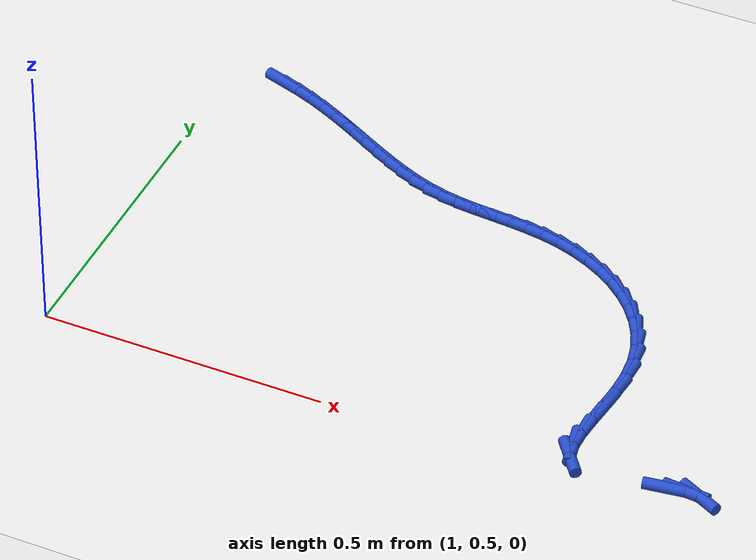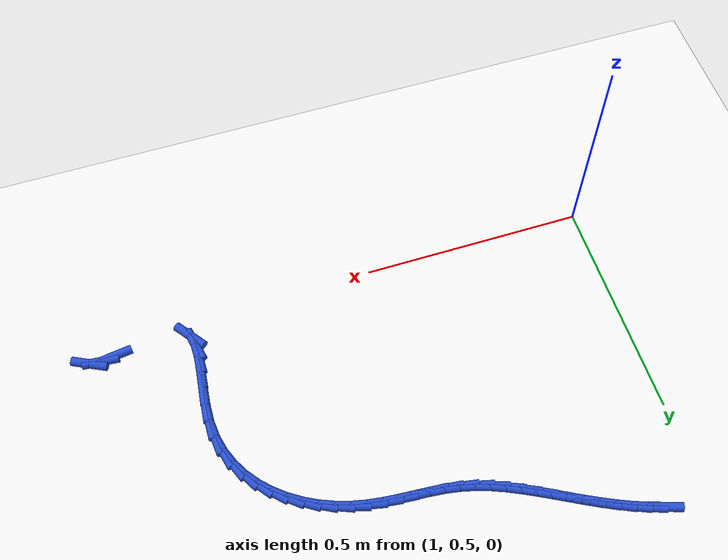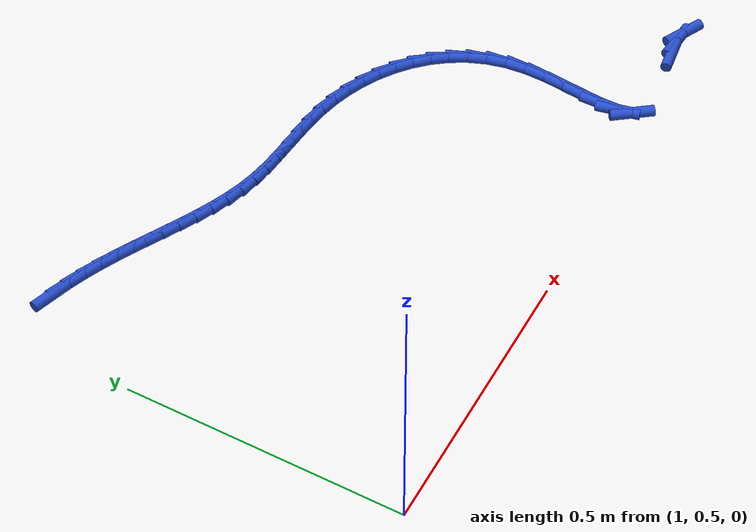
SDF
<sdf version="1.6">
 <world name="default">
  <model name="ground_plane">
   <static>1</static>
   <link name="link">
    <collision name="collision">
     <geometry><plane><normal>0 0 1</normal><size>100 100</size></plane></geometry>
     <surface><friction><ode><mu>100</mu><mu2>50</mu2></ode></friction></surface>
    </collision>
    <visual name="visual">
     <cast_shadows>0</cast_shadows>
     <geometry><plane><normal>0 0 1</normal><size>100 100</size></plane></geometry>
     <material>
      <script><uri>file://media/materials/scripts/gazebo.material</uri><name>Gazebo/WhiteGlow</name></script>
     </material>
    </visual>
   </link>
  </model>
  <model name="line">
   <link name="link_58">
    <pose>1.099072467121768 1.2077701602756707 0.01 0 1.57 -0.31014629061184196</pose>
    <collision name="collision">
     <geometry><cylinder><radius>0.01</radius><length>0.08</length></cylinder></geometry>
    </collision>
    <visual name="visual">
     <material>
      <script><name>Gazebo/Blue</name><uri>file://media/materials/scripts/gazebo.material</uri></script>
     </material>
     <geometry><cylinder><radius>0.01</radius><length>0.08</length></cylinder></geometry>
    </visual>
   </link>
   <link name="link_59">
    <pose>1.1291945976557205 1.1981163543830604 0.01 0 1.57 -0.36388642734052323</pose>
    <collision name="collision">
     <geometry><cylinder><radius>0.01</radius><length>0.08</length></cylinder></geometry>
    </collision>
    <visual name="visual">
     <material>
      <script><name>Gazebo/Blue</name><uri>file://media/materials/scripts/gazebo.material</uri></script>
     </material>
     <geometry><cylinder><radius>0.01</radius><length>0.08</length></cylinder></geometry>
    </visual>
   </link>
   <link name="link_60">
    <pose>1.1585133068817368 1.1869504287228003 0.01 0 1.57 -0.4089232763050112</pose>
    <collision name="collision">
     <geometry><cylinder><radius>0.01</radius><length>0.08</length></cylinder></geometry>
    </collision>
    <visual name="visual">
     <material>
      <script><name>Gazebo/Blue</name><uri>file://media/materials/scripts/gazebo.material</uri></script>
     </material>
     <geometry><cylinder><radius>0.01</radius><length>0.08</length></cylinder></geometry>
    </visual>
   </link>
   <link name="link_61">
    <pose>1.1872229321218786 1.1745090643503224 0.01 0 1.57 -0.44460271883285246</pose>
    <collision name="collision">
     <geometry><cylinder><radius>0.01</radius><length>0.08</length></cylinder></geometry>
    </collision>
    <visual name="visual">
     <material>
      <script><name>Gazebo/Blue</name><uri>file://media/materials/scripts/gazebo.material</uri></script>
     </material>
     <geometry><cylinder><radius>0.01</radius><length>0.08</length></cylinder></geometry>
    </visual>
   </link>
   <link name="link_62">
    <pose>1.2155178106982085 1.16102894232106 0.01 0 1.57 -0.47060362511649007</pose>
    <collision name="collision">
     <geometry><cylinder><radius>0.01</radius><length>0.08</length></cylinder></geometry>
    </collision>
    <visual name="visual">
     <material>
      <script><name>Gazebo/Blue</name><uri>file://media/materials/scripts/gazebo.material</uri></script>
     </material>
     <geometry><cylinder><radius>0.01</radius><length>0.08</length></cylinder></geometry>
    </visual>
   </link>
   <link name="link_63">
    <pose>1.2435922799327899 1.1467467436904446 0.01 0 1.57 -0.48685586399208586</pose>
    <collision name="collision">
     <geometry><cylinder><radius>0.01</radius><length>0.08</length></cylinder></geometry>
    </collision>
    <visual name="visual">
     <material>
      <script><name>Gazebo/Blue</name><uri>file://media/materials/scripts/gazebo.material</uri></script>
     </material>
     <geometry><cylinder><radius>0.01</radius><length>0.08</length></cylinder></geometry>
    </visual>
   </link>
   <link name="link_64">
    <pose>1.2716406771476843 1.1318991495139095 0.01 0 1.57 -0.49330244291777964</pose>
    <collision name="collision">
     <geometry><cylinder><radius>0.01</radius><length>0.08</length></cylinder></geometry>
    </collision>
    <visual name="visual">
     <material>
      <script><name>Gazebo/Blue</name><uri>file://media/materials/scripts/gazebo.material</uri></script>
     </material>
     <geometry><cylinder><radius>0.01</radius><length>0.08</length></cylinder></geometry>
    </visual>
   </link>
   <link name="link_65">
    <pose>1.2998517276485444 1.1167318267578665 0.01 0 1.57 -0.48777460467968503</pose>
    <collision name="collision">
     <geometry><cylinder><radius>0.01</radius><length>0.08</length></cylinder></geometry>
    </collision>
    <visual name="visual">
     <material>
      <script><name>Gazebo/Blue</name><uri>file://media/materials/scripts/gazebo.material</uri></script>
     </material>
     <geometry><cylinder><radius>0.01</radius><length>0.08</length></cylinder></geometry>
    </visual>
   </link>
   <link name="link_66">
    <pose>1.3283318960715478 1.1016221574442704 0.01 0 1.57 -0.4685803499271244</pose>
    <collision name="collision">
     <geometry><cylinder><radius>0.01</radius><length>0.08</length></cylinder></geometry>
    </collision>
    <visual name="visual">
     <material>
      <script><name>Gazebo/Blue</name><uri>file://media/materials/scripts/gazebo.material</uri></script>
     </material>
     <geometry><cylinder><radius>0.01</radius><length>0.08</length></cylinder></geometry>
    </visual>
   </link>
   <link name="link_67">
    <pose>1.3571251868235479 1.0870475343611745 0.01 0 1.57 -0.4354119637159868</pose>
    <collision name="collision">
     <geometry><cylinder><radius>0.01</radius><length>0.08</length></cylinder></geometry>
    </collision>
    <visual name="visual">
     <material>
      <script><name>Gazebo/Blue</name><uri>file://media/materials/scripts/gazebo.material</uri></script>
     </material>
     <geometry><cylinder><radius>0.01</radius><length>0.08</length></cylinder></geometry>
    </visual>
   </link>
   <link name="link_68">
    <pose>1.3862740467506751 1.0734878442490714 0.01 0 1.57 -0.38766656314834985</pose>
    <collision name="collision">
     <geometry><cylinder><radius>0.01</radius><length>0.08</length></cylinder></geometry>
    </collision>
    <visual name="visual">
     <material>
      <script><name>Gazebo/Blue</name><uri>file://media/materials/scripts/gazebo.material</uri></script>
     </material>
     <geometry><cylinder><radius>0.01</radius><length>0.08</length></cylinder></geometry>
    </visual>
   </link>
   <link name="link_69">
    <pose>1.4158209226990603 1.0614229738484542 0.01 0 1.57 -0.3245806004094552</pose>
    <collision name="collision">
     <geometry><cylinder><radius>0.01</radius><length>0.08</length></cylinder></geometry>
    </collision>
    <visual name="visual">
     <material>
      <script><name>Gazebo/Blue</name><uri>file://media/materials/scripts/gazebo.material</uri></script>
     </material>
     <geometry><cylinder><radius>0.01</radius><length>0.08</length></cylinder></geometry>
    </visual>
   </link>
   <link name="link_70">
    <pose>1.4458082615148342 1.0513328098998154 0.01 0 1.57 -0.24566906801516292</pose>
    <collision name="collision">
     <geometry><cylinder><radius>0.01</radius><length>0.08</length></cylinder></geometry>
    </collision>
    <visual name="visual">
     <material>
      <script><name>Gazebo/Blue</name><uri>file://media/materials/scripts/gazebo.material</uri></script>
     </material>
     <geometry><cylinder><radius>0.01</radius><length>0.08</length></cylinder></geometry>
    </visual>
   </link>
   <link name="link_71">
    <pose>1.476278074529732 1.0436930014944208 0.01 0 1.57 -0.16463551399433787</pose>
    <collision name="collision">
     <geometry><cylinder><radius>0.01</radius><length>0.08</length></cylinder></geometry>
    </collision>
    <visual name="visual">
     <material>
      <script><name>Gazebo/Blue</name><uri>file://media/materials/scripts/gazebo.material</uri></script>
     </material>
     <geometry><cylinder><radius>0.01</radius><length>0.08</length></cylinder></geometry>
    </visual>
   </link>
   <link name="link_72">
    <pose>1.507228360196232 1.0385509428919517 0.01 0 1.57 -0.10761900310513371</pose>
    <collision name="collision">
     <geometry><cylinder><radius>0.01</radius><length>0.08</length></cylinder></geometry>
    </collision>
    <visual name="visual">
     <material>
      <script><name>Gazebo/Blue</name><uri>file://media/materials/scripts/gazebo.material</uri></script>
     </material>
     <geometry><cylinder><radius>0.01</radius><length>0.08</length></cylinder></geometry>
    </visual>
   </link>
   <link name="link_73">
    <pose>1.5385759505619285 1.0351642616829078 0.01 0 1.57 -0.07752485123252725</pose>
    <collision name="collision">
     <geometry><cylinder><radius>0.01</radius><length>0.08</length></cylinder></geometry>
    </collision>
    <visual name="visual">
     <material>
      <script><name>Gazebo/Blue</name><uri>file://media/materials/scripts/gazebo.material</uri></script>
     </material>
     <geometry><cylinder><radius>0.01</radius><length>0.08</length></cylinder></geometry>
    </visual>
   </link>
   <link name="link_74">
    <pose>1.5702289272033598 1.0327054414823718 0.01 0 1.57 -0.07387656196088468</pose>
    <collision name="collision">
     <geometry><cylinder><radius>0.01</radius><length>0.08</length></cylinder></geometry>
    </collision>
    <visual name="visual">
     <material>
      <script><name>Gazebo/Blue</name><uri>file://media/materials/scripts/gazebo.material</uri></script>
     </material>
     <geometry><cylinder><radius>0.01</radius><length>0.08</length></cylinder></geometry>
    </visual>
   </link>
   <link name="link_75">
    <pose>1.6020953716970612 1.0303469659054256 0.01 0 1.57 -0.09616513398276337</pose>
    <collision name="collision">
     <geometry><cylinder><radius>0.01</radius><length>0.08</length></cylinder></geometry>
    </collision>
    <visual name="visual">
     <material>
      <script><name>Gazebo/Blue</name><uri>file://media/materials/scripts/gazebo.material</uri></script>
     </material>
     <geometry><cylinder><radius>0.01</radius><length>0.08</length></cylinder></geometry>
    </visual>
   </link>
   <link name="link_76">
    <pose>1.6340833656195697 1.0272613185671522 0.01 0 1.57 -0.1439285080394191</pose>
    <collision name="collision">
     <geometry><cylinder><radius>0.01</radius><length>0.08</length></cylinder></geometry>
    </collision>
    <visual name="visual">
     <material>
      <script><name>Gazebo/Blue</name><uri>file://media/materials/scripts/gazebo.material</uri></script>
     </material>
     <geometry><cylinder><radius>0.01</radius><length>0.08</length></cylinder></geometry>
    </visual>
   </link>
   <link name="link_77">
    <pose>1.6661009905474229 1.022620983082634 0.01 0 1.57 -0.2162342092251296</pose>
    <collision name="collision">
     <geometry><cylinder><radius>0.01</radius><length>0.08</length></cylinder></geometry>
    </collision>
    <visual name="visual">
     <material>
      <script><name>Gazebo/Blue</name><uri>file://media/materials/scripts/gazebo.material</uri></script>
     </material>
     <geometry><cylinder><radius>0.01</radius><length>0.08</length></cylinder></geometry>
    </visual>
   </link>
   <link name="link_78">
    <pose>1.6980549061627606 1.0156017102722732 0.01 0 1.57 -0.30388142257924067</pose>
    <collision name="collision">
     <geometry><cylinder><radius>0.01</radius><length>0.08</length></cylinder></geometry>
    </collision>
    <visual name="visual">
     <material>
      <script><name>Gazebo/Blue</name><uri>file://media/materials/scripts/gazebo.material</uri></script>
     </material>
     <geometry><cylinder><radius>0.01</radius><length>0.08</length></cylinder></geometry>
    </visual>
   </link>
   <link name="link_79">
    <pose>1.7297251984878268 1.0056700898093363 0.01 0 1.57 -0.393933834168226</pose>
    <collision name="collision">
     <geometry><cylinder><radius>0.01</radius><length>0.08</length></cylinder></geometry>
    </collision>
    <visual name="visual">
     <material>
      <script><name>Gazebo/Blue</name><uri>file://media/materials/scripts/gazebo.material</uri></script>
     </material>
     <geometry><cylinder><radius>0.01</radius><length>0.08</length></cylinder></geometry>
    </visual>
   </link>
   <link name="link_80">
    <pose>1.7606674321297915 0.9928086129445355 0.01 0 1.57 -0.48709947060590697</pose>
    <collision name="collision">
     <geometry><cylinder><radius>0.01</radius><length>0.08</length></cylinder></geometry>
    </collision>
    <visual name="visual">
     <material>
      <script><name>Gazebo/Blue</name><uri>file://media/materials/scripts/gazebo.material</uri></script>
     </material>
     <geometry><cylinder><radius>0.01</radius><length>0.08</length></cylinder></geometry>
    </visual>
   </link>
   <link name="link_81">
    <pose>1.7904141194395657 0.9770527400200343 0.01 0 1.57 -0.5853447303482275</pose>
    <collision name="collision">
     <geometry><cylinder><radius>0.01</radius><length>0.08</length></cylinder></geometry>
    </collision>
    <visual name="visual">
     <material>
      <script><name>Gazebo/Blue</name><uri>file://media/materials/scripts/gazebo.material</uri></script>
     </material>
     <geometry><cylinder><radius>0.01</radius><length>0.08</length></cylinder></geometry>
    </visual>
   </link>
   <link name="link_82">
    <pose>1.8184977727680594 0.9584379313779963 0.01 0 1.57 -0.6904176097751761</pose>
    <collision name="collision">
     <geometry><cylinder><radius>0.01</radius><length>0.08</length></cylinder></geometry>
    </collision>
    <visual name="visual">
     <material>
      <script><name>Gazebo/Blue</name><uri>file://media/materials/scripts/gazebo.material</uri></script>
     </material>
     <geometry><cylinder><radius>0.01</radius><length>0.08</length></cylinder></geometry>
    </visual>
   </link>
   <link name="link_83">
    <pose>1.8444509044661836 0.9369996473605843 0.01 0 1.57 -0.8037052941563629</pose>
    <collision name="collision">
     <geometry><cylinder><radius>0.01</radius><length>0.08</length></cylinder></geometry>
    </collision>
    <visual name="visual">
     <material>
      <script><name>Gazebo/Blue</name><uri>file://media/materials/scripts/gazebo.material</uri></script>
     </material>
     <geometry><cylinder><radius>0.01</radius><length>0.08</length></cylinder></geometry>
    </visual>
   </link>
   <link name="link_84">
    <pose>1.8678060268848482 0.9127733483099614 0.01 0 1.57 -0.9259802816076672</pose>
    <collision name="collision">
     <geometry><cylinder><radius>0.01</radius><length>0.08</length></cylinder></geometry>
    </collision>
    <visual name="visual">
     <material>
      <script><name>Gazebo/Blue</name><uri>file://media/materials/scripts/gazebo.material</uri></script>
     </material>
     <geometry><cylinder><radius>0.01</radius><length>0.08</length></cylinder></geometry>
    </visual>
   </link>
   <link name="link_85">
    <pose>1.8880956523749646 0.8857944945682905 0.01 0 1.57 -1.0570605479427118</pose>
    <collision name="collision">
     <geometry><cylinder><radius>0.01</radius><length>0.08</length></cylinder></geometry>
    </collision>
    <visual name="visual">
     <material>
      <script><name>Gazebo/Blue</name><uri>file://media/materials/scripts/gazebo.material</uri></script>
     </material>
     <geometry><cylinder><radius>0.01</radius><length>0.08</length></cylinder></geometry>
    </visual>
   </link>
   <link name="link_86">
    <pose>1.9048522932874432 0.8560985464777355 0.01 0 1.57 -1.1954890462584167</pose>
    <collision name="collision">
     <geometry><cylinder><radius>0.01</radius><length>0.08</length></cylinder></geometry>
    </collision>
    <visual name="visual">
     <material>
      <script><name>Gazebo/Blue</name><uri>file://media/materials/scripts/gazebo.material</uri></script>
     </material>
     <geometry><cylinder><radius>0.01</radius><length>0.08</length></cylinder></geometry>
    </visual>
   </link>
   <link name="link_87">
    <pose>1.9176084619731937 0.8237209643804592 0.01 0 1.57 -1.338425701396804</pose>
    <collision name="collision">
     <geometry><cylinder><radius>0.01</radius><length>0.08</length></cylinder></geometry>
    </collision>
    <visual name="visual">
     <material>
      <script><name>Gazebo/Blue</name><uri>file://media/materials/scripts/gazebo.material</uri></script>
     </material>
     <geometry><cylinder><radius>0.01</radius><length>0.08</length></cylinder></geometry>
    </visual>
   </link>
   <link name="link_88">
    <pose>1.925896670783128 0.7886972086186247 0.01 0 1.57 -1.4817090207864423</pose>
    <collision name="collision">
     <geometry><cylinder><radius>0.01</radius><length>0.08</length></cylinder></geometry>
    </collision>
    <visual name="visual">
     <material>
      <script><name>Gazebo/Blue</name><uri>file://media/materials/scripts/gazebo.material</uri></script>
     </material>
     <geometry><cylinder><radius>0.01</radius><length>0.08</length></cylinder></geometry>
    </visual>
   </link>
   <link name="link_89">
    <pose>1.9292578210882487 0.7510683502551606 0.01 0 1.57 1.5403237343783949</pose>
    <collision name="collision">
     <geometry><cylinder><radius>0.01</radius><length>0.08</length></cylinder></geometry>
    </collision>
    <visual name="visual">
     <material>
      <script><name>Gazebo/Blue</name><uri>file://media/materials/scripts/gazebo.material</uri></script>
     </material>
     <geometry><cylinder><radius>0.01</radius><length>0.08</length></cylinder></geometry>
    </visual>
   </link>
   <link name="link_90">
    <pose>1.9280493060326667 0.7114215440786045 0.01 0 1.57 1.4730102300727461</pose>
    <collision name="collision">
     <geometry><cylinder><radius>0.01</radius><length>0.08</length></cylinder></geometry>
    </collision>
    <visual name="visual">
     <material>
      <script><name>Gazebo/Blue</name><uri>file://media/materials/scripts/gazebo.material</uri></script>
     </material>
     <geometry><cylinder><radius>0.01</radius><length>0.08</length></cylinder></geometry>
    </visual>
   </link>
   <link name="link_91">
    <pose>1.924117316093045 0.6713396781118165 0.01 0 1.57 1.4515797981603273</pose>
    <collision name="collision">
     <geometry><cylinder><radius>0.01</radius><length>0.08</length></cylinder></geometry>
    </collision>
    <visual name="visual">
     <material>
      <script><name>Gazebo/Blue</name><uri>file://media/materials/scripts/gazebo.material</uri></script>
     </material>
     <geometry><cylinder><radius>0.01</radius><length>0.08</length></cylinder></geometry>
    </visual>
   </link>
   <link name="link_92">
    <pose>1.9194662984952748 0.6325114852104751 0.01 0 1.57 1.477283483389828</pose>
    <collision name="collision">
     <geometry><cylinder><radius>0.01</radius><length>0.08</length></cylinder></geometry>
    </collision>
    <visual name="visual">
     <material>
      <script><name>Gazebo/Blue</name><uri>file://media/materials/scripts/gazebo.material</uri></script>
     </material>
     <geometry><cylinder><radius>0.01</radius><length>0.08</length></cylinder></geometry>
    </visual>
   </link>
   <link name="link_93">
    <pose>1.9161007004652502 0.5966256982302588 0.01 0 1.57 1.5683732923813876</pose>
    <collision name="collision">
     <geometry><cylinder><radius>0.01</radius><length>0.08</length></cylinder></geometry>
    </collision>
    <visual name="visual">
     <material>
      <script><name>Gazebo/Blue</name><uri>file://media/materials/scripts/gazebo.material</uri></script>
     </material>
     <geometry><cylinder><radius>0.01</radius><length>0.08</length></cylinder></geometry>
    </visual>
   </link>
   <link name="link_94">
    <pose>1.9160249692288627 0.5653710500268471 0.01 0 1.57 -1.364484879091379</pose>
    <collision name="collision">
     <geometry><cylinder><radius>0.01</radius><length>0.08</length></cylinder></geometry>
    </collision>
    <visual name="visual">
     <material>
      <script><name>Gazebo/Blue</name><uri>file://media/materials/scripts/gazebo.material</uri></script>
     </material>
     <geometry><cylinder><radius>0.01</radius><length>0.08</length></cylinder></geometry>
    </visual>
   </link>
   <link name="link_95">
    <pose>1.9212435520120046 0.540436273455918 0.01 0 1.57 -0.9340323593654214</pose>
    <collision name="collision">
     <geometry><cylinder><radius>0.01</radius><length>0.08</length></cylinder></geometry>
    </collision>
    <visual name="visual">
     <material>
      <script><name>Gazebo/Blue</name><uri>file://media/materials/scripts/gazebo.material</uri></script>
     </material>
     <geometry><cylinder><radius>0.01</radius><length>0.08</length></cylinder></geometry>
    </visual>
   </link>
   <link name="link_101">
    <pose>2.0896167810710797 0.5386299835574062 0.01 0 1.57 0.13596161708038573</pose>
    <collision name="collision">
     <geometry><cylinder><radius>0.01</radius><length>0.08</length></cylinder></geometry>
    </collision>
    <visual name="visual">
     <material>
      <script><name>Gazebo/Blue</name><uri>file://media/materials/scripts/gazebo.material</uri></script>
     </material>
     <geometry><cylinder><radius>0.01</radius><length>0.08</length></cylinder></geometry>
    </visual>
   </link>
   <link name="link_102">
    <pose>2.1202122702265243 0.5428156188514461 0.01 0 1.57 -0.07956395112983035</pose>
    <collision name="collision">
     <geometry><cylinder><radius>0.01</radius><length>0.08</length></cylinder></geometry>
    </collision>
    <visual name="visual">
     <material>
      <script><name>Gazebo/Blue</name><uri>file://media/materials/scripts/gazebo.material</uri></script>
     </material>
     <geometry><cylinder><radius>0.01</radius><length>0.08</length></cylinder></geometry>
    </visual>
   </link>
   <link name="link_103">
    <pose>2.143975732043069 0.5409209041336847 0.01 0 1.57 -0.4616038752371523</pose>
    <collision name="collision">
     <geometry><cylinder><radius>0.01</radius><length>0.08</length></cylinder></geometry>
    </collision>
    <visual name="visual">
     <material>
      <script><name>Gazebo/Blue</name><uri>file://media/materials/scripts/gazebo.material</uri></script>
     </material>
     <geometry><cylinder><radius>0.01</radius><length>0.08</length></cylinder></geometry>
    </visual>
   </link>
  </model>
 </world>
</sdf>
